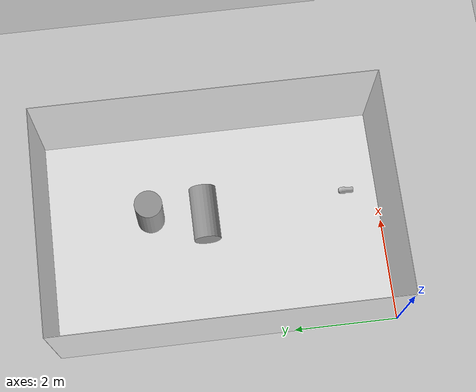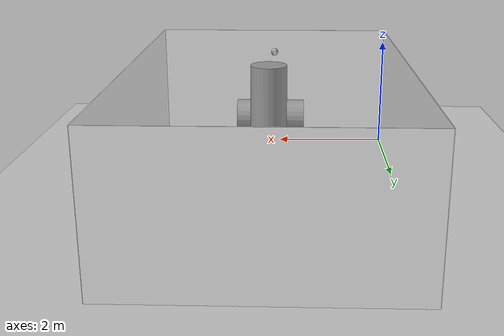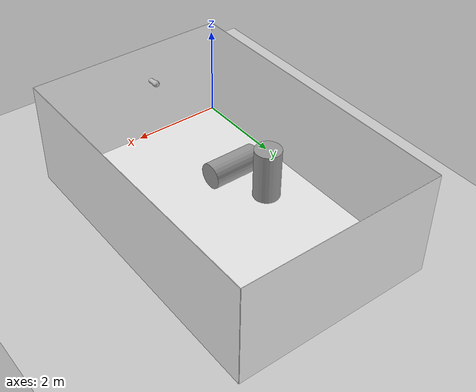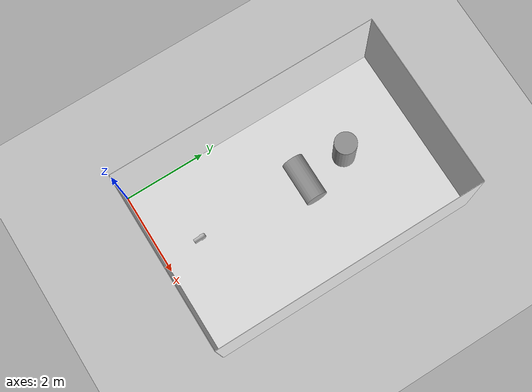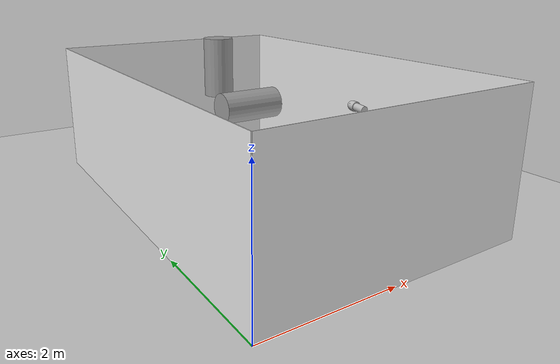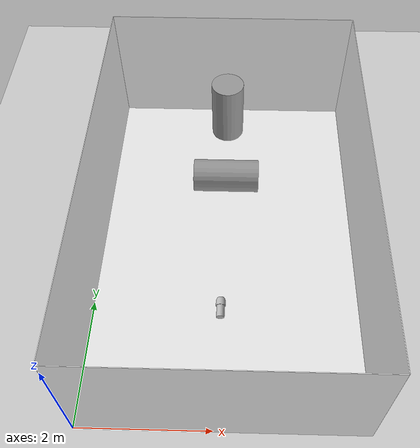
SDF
<?xml version="1.0" ?>
<sdf version="1.6">
  <world name="default">
    <include>
      <uri>model://ground_plane</uri>
    </include>
    <include>
      <uri>model://sun</uri>
    </include>

    <gui>
      <camera name='user_camera'>
        <pose>9.0 3.4 7.5 0.0 0.75 3.1</pose>
      </camera>
    </gui>

    <!-- basement tank -->
    <include>
      <uri>model://basement_tank</uri>
      <pose>0 0 0 0 0 0</pose>
      <static>true</static>
    </include>

    <!-- cylinder target 1 -->
    <include>
      <uri>model://cylinder_target</uri>
      <name>cylinder_target1</name>
      <pose>2.1 4.5 2.0 0 0 0</pose>
      <static>true</static>
    </include>

    <!-- cylinder target 2 -->
    <include>
      <uri>model://cylinder_target</uri>
      <name>cylinder_target2</name>
      <pose>2.1 3.5 1.5 0 1.5709 0</pose>
      <static>true</static>
    </include>

    <!-- Blueview P900 -->
    <include>
      <uri>model://blueview_p900_nps_multibeam_ray</uri>
      <name>blueview_p900</name>
      <pose>2.1 1.0 2.0 3.14159265359 -0.1 1.5709</pose>
      <static>true</static>
    </include>

  </world>
</sdf>

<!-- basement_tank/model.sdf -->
<sdf version='1.6'>
  <model name='basement_tank_model'>
    <link name='basement_tank'>
      <inertial>
        <mass>1</mass>
      </inertial>

      <collision name='bottom'>
        <laser_retro>50</laser_retro>
        <pose frame=''>2.135 3.27 0.005 0 -0 0</pose>
        <geometry>
          <box>
            <size>4.27 6.54 0.01</size>
          </box>
        </geometry>
      </collision>
      <visual name='visual1'>
        <laser_retro>50</laser_retro>
        <pose frame=''>2.135 3.27 0.005 0 -0 0</pose>
        <geometry>
          <box>
            <size>4.27 6.54 0.01</size>
          </box>
        </geometry>
        <material>
          <script>
            <uri>file://media/materials/scripts/gazebo.material</uri>
            <name>Gazebo/White</name>
          </script>
        </material>
      </visual>

      <collision name='left_side'>
        <laser_retro>50</laser_retro>
        <pose frame=''>-0.005 3.27 1.12 0 -0 0</pose>
        <geometry>
          <box>
            <size>0.01 6.54 2.24</size>
          </box>
        </geometry>
      </collision>
      <visual name='visual2'>
        <laser_retro>50</laser_retro>
        <pose frame=''>-0.005 3.27 1.12 0 -0 0</pose>
        <geometry>
          <box>
            <size>0.01 6.54 2.24</size>
          </box>
        </geometry>
        <material>
          <script>
            <uri>file://media/materials/scripts/gazebo.material</uri>
            <name>Gazebo/White</name>
          </script>
        </material>
      </visual>

      <collision name='right_side'>
        <laser_retro>50</laser_retro>
        <pose frame=''>4.275 3.27 1.12 0 -0 0</pose>
        <geometry>
          <box>
            <size>0.01 6.54 2.24</size>
          </box>
        </geometry>
      </collision>
      <visual name='visual3'>
        <laser_retro>50</laser_retro>
        <pose frame=''>4.275 3.27 1.12 0 -0 0</pose>
        <geometry>
          <box>
            <size>0.01 6.54 2.24</size>
          </box>
        </geometry>
        <material>
          <script>
            <uri>file://media/materials/scripts/gazebo.material</uri>
            <name>Gazebo/White</name>
          </script>
        </material>
      </visual>

      <collision name='front_side'>
        <laser_retro>50</laser_retro>
        <pose frame=''>2.135 -0.005 1.12 0 -0 0</pose>
        <geometry>
          <box>
            <size>4.27 0.01 2.24</size>
          </box>
        </geometry>
      </collision>
      <visual name='visual4'>
        <laser_retro>50</laser_retro>
        <pose frame=''>2.135 -0.005 1.12 0 -0 0</pose>
        <geometry>
          <box>
            <size>4.27 0.01 2.24</size>
          </box>
        </geometry>
        <material>
          <script>
            <uri>file://media/materials/scripts/gazebo.material</uri>
            <name>Gazebo/White</name>
          </script>
        </material>
      </visual>

      <collision name='back_side'>
        <laser_retro>50</laser_retro>
        <pose frame=''>2.135 6.545 1.12 0 -0 0</pose>
        <geometry>
          <box>
            <size>4.27 0.01 2.24</size>
          </box>
        </geometry>
      </collision>
      <visual name='visual5'>
        <laser_retro>50</laser_retro>
        <pose frame=''>2.135 6.545 1.12 0 -0 0</pose>
        <geometry>
          <box>
            <size>4.27 0.01 2.24</size>
          </box>
        </geometry>
        <material>
          <script>
            <uri>file://media/materials/scripts/gazebo.material</uri>
            <name>Gazebo/White</name>
          </script>
        </material>
      </visual>

    </link>
  </model>
</sdf>

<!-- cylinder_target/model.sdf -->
<sdf version="1.6">
  <model name ='cylinder_target'>
    <link name='link'>
      <inertial>
        <mass>1</mass>
        <inertia>
          <ixx>0.145833</ixx>
          <ixy>0</ixy>
          <ixz>0</ixz>
          <iyy>0.145833</iyy>
          <iyz>0</iyz>
          <izz>0.125</izz>
        </inertia>
        <pose frame=''>0 0 0 0 -0 0</pose>
      </inertial>
      <collision name='cylinder'>
        <laser_retro>255</laser_retro>
        <geometry>
          <cylinder>
            <radius>0.25</radius>
            <length>1</length>
          </cylinder>
        </geometry>
        <max_contacts>10</max_contacts>
        <surface>
          <contact>
            <ode/>
          </contact>
          <bounce/>
          <friction>
            <torsional>
              <ode/>
            </torsional>
            <ode/>
          </friction>
        </surface>
      </collision>
      <visual name='visual'>
        <laser_retro>255</laser_retro>
        <geometry>
          <cylinder>
            <radius>0.25</radius>
            <length>1</length>
          </cylinder>
        </geometry>
        <material>
          <script>
            <name>Gazebo/Grey</name>
            <uri>file://media/materials/scripts/gazebo.material</uri>
          </script>
        </material>
      </visual>
      <self_collide>0</self_collide>
      <enable_wind>0</enable_wind>
      <kinematic>0</kinematic>
    </link>
  </model>
</sdf>

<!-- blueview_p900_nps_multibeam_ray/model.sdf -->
<sdf version="1.6">
  <model name="blueview_p900_ray">
    <link name="forward_sonar_link">
      <inertial>
        <pose>0 0 0 0 0 0</pose>
        <mass>4.35</mass>
        <inertia>
          <ixx>0.0360</ixx>          <!-- 1/12ml^2 -->
          <ixy>0</ixy>
          <ixz>0</ixz>
          <iyy>0</iyy>
          <iyz>0</iyz>
          <izz>0.0360</izz>
        </inertia>
      </inertial>
      <collision name="collision">
        <geometry>
          <mesh>
            <uri>model://blueview_p900_nps_multibeam/meshes/COLLISION-p900.dae</uri>
          </mesh>
        </geometry>
      </collision>
      <visual name="visual">
        <geometry>
          <mesh>
            <uri>model://blueview_p900_nps_multibeam/meshes/p900.dae</uri>
          </mesh>
        </geometry>
      </visual>

      <sensor name="ray_sonar" type="gpu_ray">
        <visualize>false</visualize>
        <always_on>true</always_on>
        <update_rate>20</update_rate>

        <ray>
          <scan>
            <!-- Set horizontal FOV by setting image height -->
            <!-- 512 beams with 90 degrees horizontal FOV (M900-90) -->
            <horizontal>
              <samples>512</samples>
              <resolution>1</resolution>
              <min_angle>-0.78539816339</min_angle>
              <max_angle>0.78539816339</max_angle>
            </horizontal>
            <!-- Set vertical FOV by setting image height -->
            <!-- Approx 2 times the spec sheet (sepc: 20 deg.) -->
            <vertical>
              <samples>300</samples>
              <resolution>1</resolution>
              <min_angle>-0.349066</min_angle>
              <max_angle>0.349066</max_angle>
            </vertical>
          </scan>
          <range>
            <!-- min range is a collision range no need to change-->
            <min>0.1</min>
            <max>10.0</max>
            <resolution>0.1</resolution>
          </range>
          <noise>
            <type>gaussian</type>
            <mean>0.0</mean>
            <stddev>0.01</stddev>
          </noise>
        </ray>

        <plugin name="ray_sonar_sensor" filename="libgazebo_ros_velodyne_gpu_laser.so">
           <topicName>multibeam_sonar_point_cloud</topicName>
           <static_reference_frame>forward_sonar_optical_link</static_reference_frame>
           <organize_cloud>true</organize_cloud>
           <min_range>0.2</min_range>
           <max_range>10.0</max_range>
        </plugin>

        <plugin filename="libnps_multibeam_sonar_ray_ros_plugin.so" name="forward_sonar">
          <!-- Sonar properties -->
          <verticalFOV>20</verticalFOV>
          <sonarFreq>900e3</sonarFreq>
          <bandwidth>29.9e3</bandwidth>
          <soundSpeed>1500</soundSpeed>
          <sourceLevel>220</sourceLevel>
          <maxDistance>10</maxDistance>
          <raySkips>1</raySkips>
          <sensorGain>0.02</sensorGain>
          <plotScaler>0</plotScaler>
          <writeLog>true</writeLog>
          <debugFlag>false</debugFlag>
          <writeFrameInterval>5</writeFrameInterval>
          <!-- This name is prepended to ROS topics -->
          <cameraName>blueview_p900</cameraName>
          <!-- ROS publication topics -->
          <imageTopicName>image_raw</imageTopicName>
          <cameraInfoTopicName>image_raw/camera_info</cameraInfoTopicName>
          <pointCloudTopicName>multibeam_sonar_point_cloud</pointCloudTopicName>
          <depthImageTopicName>image_depth</depthImageTopicName>
          <depthImageCameraInfoTopicName>image_depth/camera_info</depthImageCameraInfoTopicName>
          <sonarImageRawTopicName>sonar_image_raw</sonarImageRawTopicName>
          <sonarImageTopicName>sonar_image</sonarImageTopicName>
          <frameName>forward_sonar_optical_link</frameName>
        </plugin>
      </sensor>
    </link>

    <link name="forward_sonar_beam_visual_link">
      <inertial>
        <pose>0 0 0 0 0 0</pose>
        <mass>0.0001</mass>
        <inertia>
          <ixx>0.0000000017</ixx>          <!-- 1/12ml^2 -->
          <ixy>0</ixy>
          <ixz>0</ixz>
          <iyy>0.00000000017</iyy>
          <iyz>0</iyz>
          <izz>0.00000000017</izz>
        </inertia>
      </inertial>
      <sensor type="ray" name="forward_sonar_beam_visual">
        <pose>0 0 0 0 0 0</pose>
        <update_rate>5</update_rate>
        <visualize>true</visualize>
        <ray>
          <scan>
            <horizontal>
              <samples>10</samples>
              <resolution>1</resolution>
              <min_angle>-0.785398</min_angle>
              <max_angle>0.785398</max_angle>
            </horizontal>
            <vertical>
              <samples>3</samples>
              <resolution>1</resolution>
              <min_angle>-0.174533</min_angle>
              <max_angle>0.174533</max_angle>
            </vertical>
          </scan>
          <range>
            <min>0.2</min>
            <max>60</max>
            <resolution>0.01</resolution>
          </range>
        </ray>
      </sensor>
    </link>

    <joint name="forward_sonar_beam_visual_joint" type="fixed">
      <pose>0 0 0 0 0 0</pose>
      <parent>forward_sonar_link</parent>
      <child>forward_sonar_beam_visual_link</child>
    </joint>

  </model>
</sdf>
